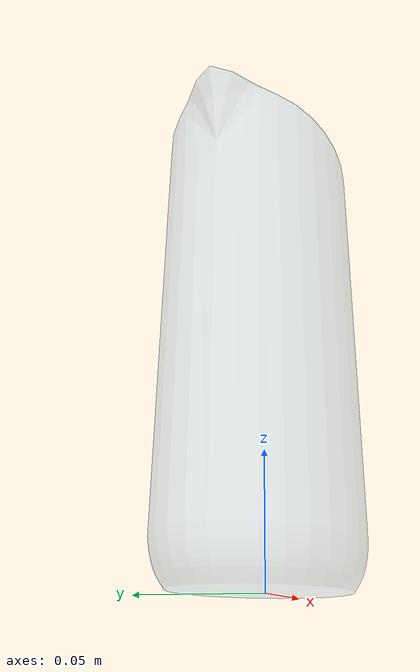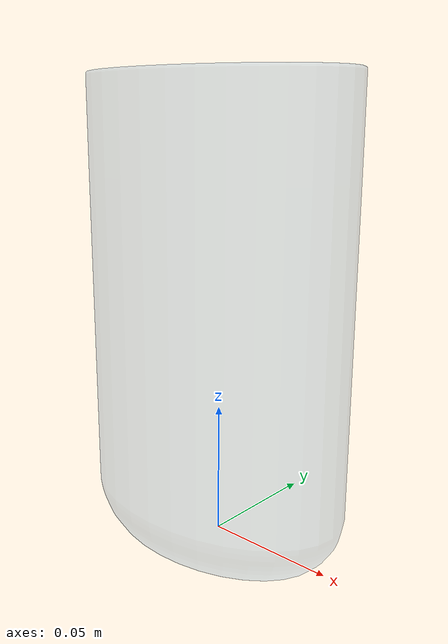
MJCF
<mujoco model="Beaker">

  <compiler angle="radian" meshdir="../../assets" />

  <option gravity="0 0 -9.81" />

  <asset>

    <mesh name="beaker_mesh" file="Beaker/base.obj" scale="3.250000 3.250000 2.100000" />
  </asset>

  <worldbody>

    <body name="beaker" quat="0.7071 0.7071 0 0" pos="0.362500 0.000000 -0.000000">

      <geom name="beaker_visual" type="mesh" mesh="beaker_mesh" rgba="0.65 0.85 1.0 0.3" contype="0" conaffinity="0" />

      <geom name="glass_sheet_collision_2" type="cylinder" size="0.053500 0.003000" pos="-0.366250 0.006125 -0.000000" euler="1.5708 0 0" contype="1" conaffinity="1" friction="0.6 0.2 0.001" density="2500" rgba="0 0 0 0" />
      <geom name="ring_1" type="box" size="0.025000 0.087500 0.001500" pos="-0.363750 0.090000 -0.033000" density="2500" contype="1" conaffinity="1" rgba="0 0 0 0" />
      <geom name="ring_2" type="box" size="0.025000 0.087500 0.001500" pos="-0.363750 0.090000 0.033000" density="2500" contype="1" conaffinity="1" rgba="0 0 0 0" />
      <geom name="ring_3" type="box" size="0.025000 0.087500 0.001500" pos="-0.312500 0.090000 -0.000000" density="2500" contype="1" conaffinity="1" euler="0 1.5708 0" rgba="0 0 0 0" />
      <geom name="ring_4" type="box" size="0.025000 0.087500 0.001500" density="2500" pos="-0.425000 0.090000 -0.000000" contype="1" conaffinity="1" euler="0 1.5708 0" rgba="0 0 0 0" />
      <geom name="ring_5" type="box" size="0.025000 0.087500 0.001500" pos="-0.408500 0.090000 -0.022950" density="2500" contype="1" conaffinity="1" euler="0 0.7854 0" rgba="0 0 0 0" />
      <geom name="ring_6" type="box" size="0.025000 0.087500 0.001500" pos="-0.327500 0.090000 0.022950" density="2500" contype="1" conaffinity="1" euler="0 0.7854 0" rgba="0 0 0 0" />
      <geom name="ring_7" type="box" size="0.025000 0.087500 0.001500" pos="-0.408500 0.090000 0.022950" density="2500" contype="1" conaffinity="1" euler="0 -0.7854 0" rgba="0 0 0 0" />
      <geom name="ring_8" type="box" size="0.025000 0.087500 0.001500" pos="-0.327500 0.090000 -0.022950" density="2500" contype="1" conaffinity="1" euler="0 -0.7854 0" rgba="0 0 0 0" />
    </body>
  </worldbody>
</mujoco>
